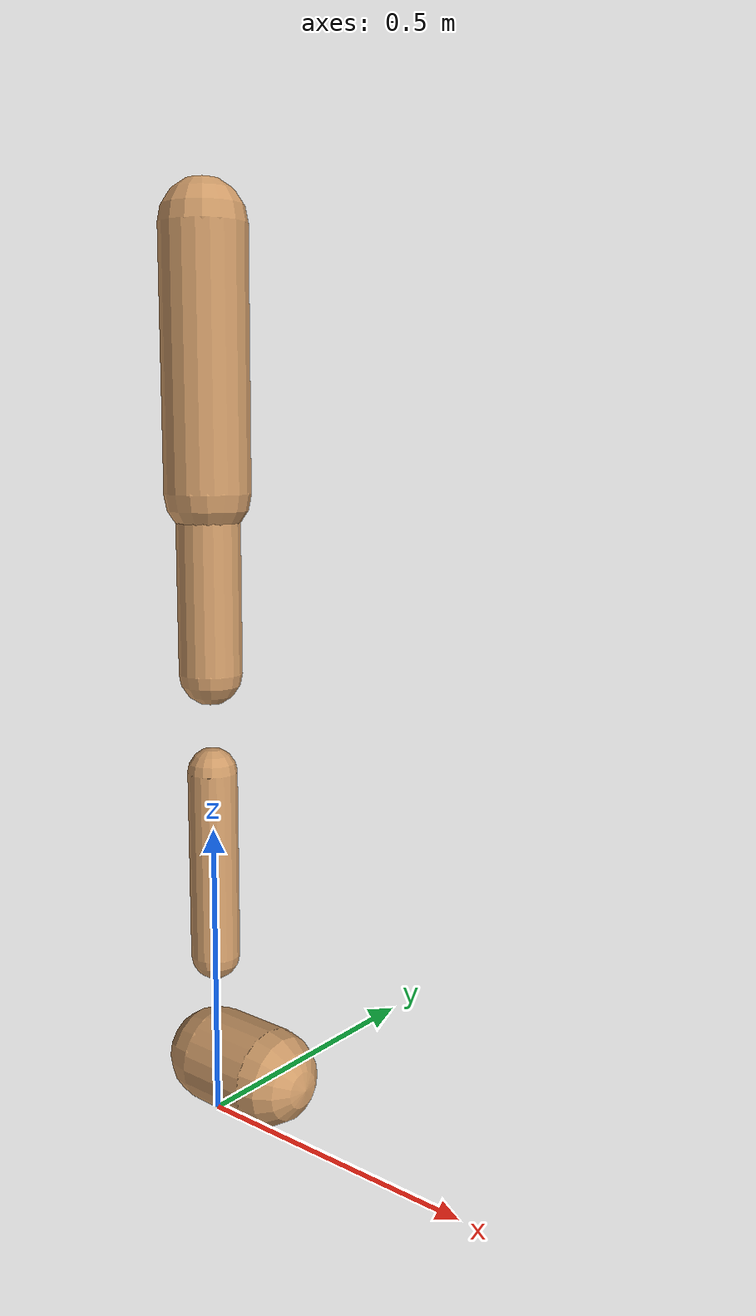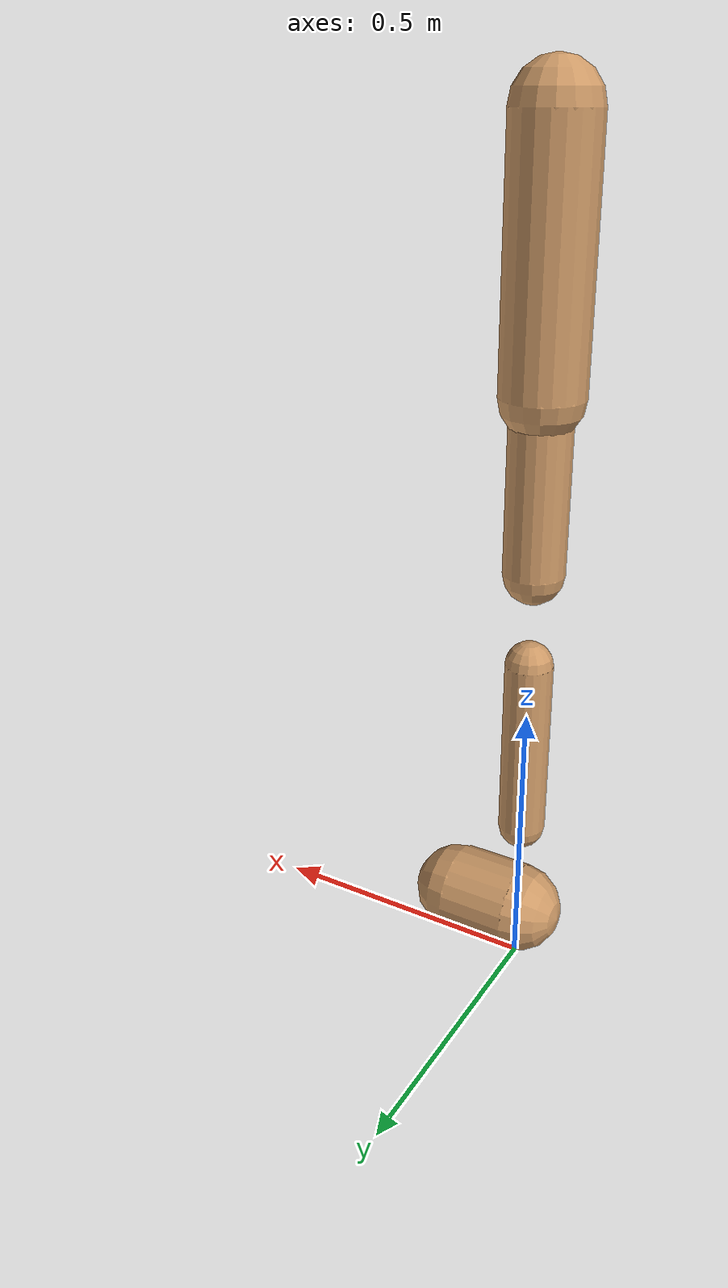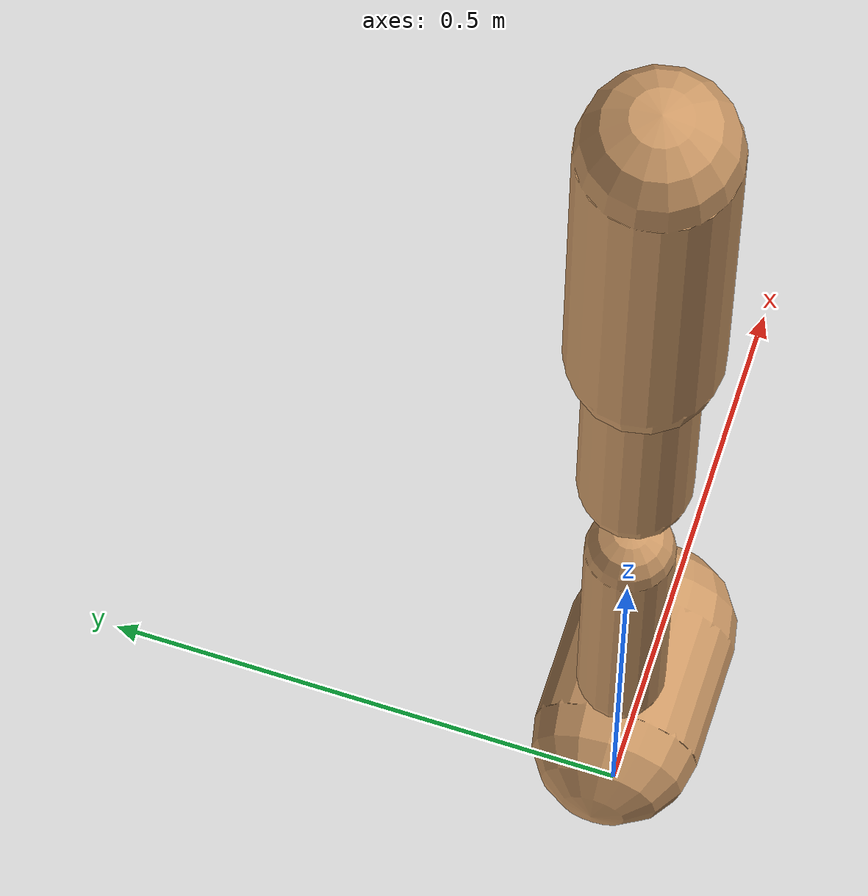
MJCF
<mujoco model="walker2d">
  <compiler angle="degree" coordinate="global" inertiafromgeom="true" />
  <default>
    <joint armature="0.01" damping=".1" limited="true" />
    <geom conaffinity="0" condim="3" contype="1" density="1000" friction="0.8 .1 .1" rgba="0.8 0.6 .4 1" />
  </default>
  <option integrator="RK4" timestep="0.002" />
  <worldbody>

    <body name="torso" pos="0 0 -0.3469522533111026">
      <joint armature="0" axis="1 0 0" damping="0" limited="false" name="ignorex" pos="0 0 0" stiffness="0" type="slide" />
      <joint armature="0" axis="0 0 1" damping="0" limited="false" name="ignorez" pos="0 0 0" ref="1.25" stiffness="0" type="slide" />
      <joint armature="0" axis="0 1 0" damping="0" limited="false" name="ignorey" pos="0 0 0" stiffness="0" type="hinge" />
      <geom fromto="0 0 1.45 0 0 1.05" name="torso_geom" size="0.06881230324302777" type="capsule" />
      <body name="thigh">
        <joint axis="0 -1 0" name="thigh_joint" pos="0 0 1.05" range="-150 0" type="hinge" />
        <geom fromto="0.0 0.0 1.05 0.0 0.0 0.764345804199996" name="thigh_geom" size="0.051334742169570194" type="capsule" />
        <body name="leg" pos="0.0 0.0 0.164345804199996">
          <joint axis="0 -1 0" name="leg_joint" pos="0 0 0.6" range="-150 0" type="hinge" />
          <geom fromto="0.0 0.0 0.6 0.0 0.0 0.2826064491111066" name="leg_geom" size="0.04106779373565615" type="capsule" />
          <body name="foot" pos="0.0 0.0 0.1826064491111066">
            <joint axis="0 -1 0" name="foot_joint" pos="0 0 0.1" range="-45 45" type="hinge" />
            <geom fromto="0.0 0.0 0.1 0.12038286039702811 0.0 0.1" name="foot_geom" size="0.07994211097333591" type="capsule" />
          </body>
        </body>
      </body>

      <body name="thigh_left">
        <joint axis="0 -1 0" name="thigh_left_joint" pos="0 0 1.05" range="-150 0" type="hinge" />
        <geom fromto="0.0 0.0 1.05 0.0 0.0 0.764345804199996" name="thigh_left_geom" rgba=".7 .3 .6 1" size="0.051334742169570194" type="capsule" />
        <body name="leg_left" pos="0.0 0.0 0.164345804199996">
          <joint axis="0 -1 0" name="leg_left_joint" pos="0 0 0.6" range="-150 0" type="hinge" />
          <geom fromto="0.0 0.0 0.6 0.0 0.0 0.2826064491111066" name="leg_left_geom" rgba=".7 .3 .6 1" size="0.04106779373565615" type="capsule" />
          <body name="foot_left" pos="0.0 0.0 0.1826064491111066">
            <joint axis="0 -1 0" name="foot_left_joint" pos="0 0 0.1" range="-45 45" type="hinge" />
            <geom fromto="0.0 0.0 0.1 0.12038286039702811 0.0 0.1" name="foot_left_geom" rgba=".7 .3 .6 1" size="0.07994211097333591" type="capsule" />
          </body>
        </body>
      </body>
    </body>
  </worldbody>
  <actuator>

    <motor ctrllimited="true" ctrlrange="-1.0 1.0" gear="100" joint="thigh_joint" />
    <motor ctrllimited="true" ctrlrange="-1.0 1.0" gear="100" joint="leg_joint" />
    <motor ctrllimited="true" ctrlrange="-1.0 1.0" gear="100" joint="foot_joint" />
    <motor ctrllimited="true" ctrlrange="-1.0 1.0" gear="100" joint="thigh_left_joint" />
    <motor ctrllimited="true" ctrlrange="-1.0 1.0" gear="100" joint="leg_left_joint" />
    <motor ctrllimited="true" ctrlrange="-1.0 1.0" gear="100" joint="foot_left_joint" />

  </actuator>
</mujoco>
